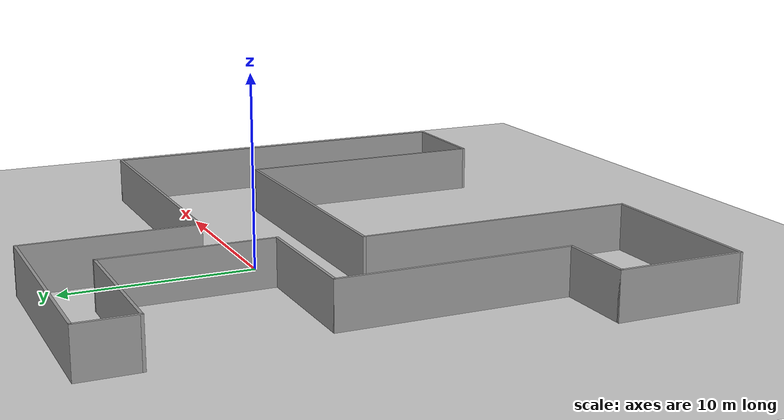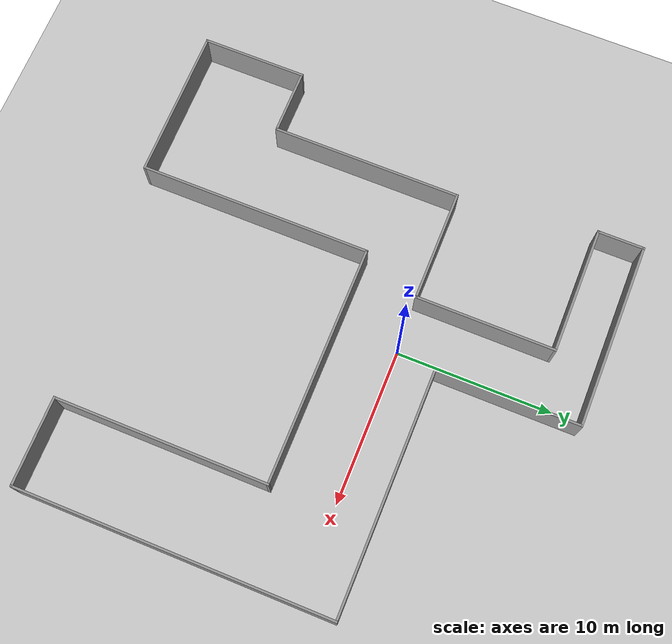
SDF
<sdf version="1.7">
 <world name="default">
  <light name="sun" type="directional">
   <pose>0 0 10 0 -0 0</pose>
   <diffuse>0.8 0.8 0.8 1</diffuse>
   <specular>0.2 0.2 0.2 1</specular>
   <attenuation>
    <range>1000</range>
    <constant>0.9</constant>
    <linear>0.01</linear>
    <quadratic>0.001</quadratic>
   </attenuation>
   <direction>-0.5 0.1 -0.9</direction>
   <spot><inner_angle>0</inner_angle><outer_angle>0</outer_angle><falloff>0</falloff></spot>
  </light>
  <model name="ground_plane">
   <static>1</static>
   <link name="link">
    <collision name="collision">
     <geometry><plane><normal>0 0 1</normal><size>100 100</size></plane></geometry>
     <surface>
      <contact><collide_bitmask>65535</collide_bitmask></contact>
      <friction><ode><mu>100</mu><mu2>50</mu2></ode></friction>
     </surface>
    </collision>
    <visual name="visual">
     <cast_shadows>0</cast_shadows>
     <geometry><plane><normal>0 0 1</normal><size>100 100</size></plane></geometry>
     <material>
      <script><uri>file://media/materials/scripts/gazebo.material</uri><name>Gazebo/Grey</name></script>
     </material>
    </visual>
   </link>
  </model>
  <gravity>0 0 -9.8</gravity>
  <magnetic_field>6e-06 2.3e-05 -4.2e-05</magnetic_field>
  <atmosphere type="adiabatic"/>
  <physics type="ode">
   <max_step_size>0.001</max_step_size>
   <real_time_factor>1</real_time_factor>
   <real_time_update_rate>1000</real_time_update_rate>
  </physics>
  <scene><ambient>0.4 0.4 0.4 1</ambient><background>0.7 0.7 0.7 1</background><shadows>1</shadows></scene>
  <audio><device>default</device></audio>
  <spherical_coordinates>
   <surface_model>EARTH_WGS84</surface_model>
   <latitude_deg>0</latitude_deg>
   <longitude_deg>0</longitude_deg>
   <elevation>0</elevation>
   <heading_deg>0</heading_deg>
  </spherical_coordinates>
  <model name="agent_bot">
   <link name="base_link">
    <inertial>
     <pose>0.102857 0 0.067857 0 -0 0</pose>
     <mass>0.7</mass>
     <inertia>
      <ixx>0.00191829</ixx>
      <ixy>0</ixy>
      <ixz>0.000573214</ixz>
      <iyy>0.00421611</iyy>
      <iyz>0</iyz>
      <izz>0.00434683</izz>
     </inertia>
    </inertial>
    <collision name="base_link_fixed_joint_lump__chassis_collision">
     <pose>0.115 0 0.075 0 -0 0</pose>
     <geometry><box><size>0.215 0.15 0.08</size></box></geometry>
    </collision>
    <collision name="base_link_fixed_joint_lump__caster_wheel_collision_1">
     <pose>0.145 0 0 0 -0 0</pose>
     <geometry><sphere><radius>0.035</radius></sphere></geometry>
     <surface><friction><ode><mu>0.001</mu><mu2>0.001</mu2></ode></friction></surface>
    </collision>
    <collision name="base_link_fixed_joint_lump__laser_frame_collision_2">
     <pose>0 0 0.1 0 -0 0</pose>
     <geometry><cylinder><length>0.04</length><radius>0.05</radius></cylinder></geometry>
    </collision>
    <visual name="base_link_fixed_joint_lump__chassis_visual">
     <pose>0.0725 0 0.04 0 -0 0</pose>
     <geometry><box><size>0.215 0.15 0.08</size></box></geometry>
     <material>
      <script><name>Gazebo/White</name><uri>file://media/materials/scripts/gazebo.material</uri></script>
     </material>
    </visual>
    <visual name="base_link_fixed_joint_lump__caster_wheel_visual_1">
     <pose>0.145 0 0 0 -0 0</pose>
     <geometry><sphere><radius>0.035</radius></sphere></geometry>
     <material>
      <script><name>Gazebo/Yellow</name><uri>file://media/materials/scripts/gazebo.material</uri></script>
     </material>
    </visual>
    <visual name="base_link_fixed_joint_lump__laser_frame_visual_2">
     <pose>0 0 0.1 0 -0 0</pose>
     <geometry><cylinder><length>0.02</length><radius>0.04</radius></cylinder></geometry>
     <material>
      <script><name>Gazebo/Red</name><uri>file://media/materials/scripts/gazebo.material</uri></script>
     </material>
    </visual>
    <sensor name="laser" type="ray">
     <visualize>1</visualize>
     <update_rate>10</update_rate>
     <ray>
      <scan>
       <horizontal>
        <samples>360</samples>
        <min_angle>-3.14</min_angle>
        <max_angle>3.14</max_angle>
        <resolution>1</resolution>
       </horizontal>
       <vertical><samples>1</samples><min_angle>0</min_angle><max_angle>0</max_angle></vertical>
      </scan>
      <range><min>0.3</min><max>50</max></range>
     </ray>
     <plugin name="laser_controller" filename="libgazebo_ros_ray_sensor.so">
      <ros><argument>~/out:=scan</argument></ros>
      <output_type>sensor_msgs/LaserScan</output_type>
      <frame_name>laser_frame</frame_name>
     </plugin>
     <pose>0 0 0.1 0 -0 0</pose>
    </sensor>
   </link>
   <joint name="left_wheel_joint" type="revolute">
    <pose relative_to="base_link">0 0.09 0 -1.57075 0 0</pose>
    <parent>base_link</parent>
    <child>left_wheel</child>
    <axis>
     <xyz>0 0 1</xyz>
     <limit><lower>-1e+16</lower><upper>1e+16</upper></limit>
     <dynamics><spring_reference>0</spring_reference><spring_stiffness>0</spring_stiffness></dynamics>
    </axis>
   </joint>
   <link name="left_wheel">
    <pose relative_to="left_wheel_joint">0 0 0 0 -0 0</pose>
    <inertial>
     <mass>0.1</mass>
     <inertia>
      <ixx>3.58333e-05</ixx>
      <ixy>0</ixy>
      <ixz>0</ixz>
      <iyy>3.58333e-05</iyy>
      <iyz>0</iyz>
      <izz>6.125e-05</izz>
     </inertia>
    </inertial>
    <collision name="left_wheel_collision">
     <geometry><sphere><radius>0.035</radius></sphere></geometry>
    </collision>
    <visual name="left_wheel_visual">
     <geometry><cylinder><length>0.025</length><radius>0.035</radius></cylinder></geometry>
     <material>
      <script><name>Gazebo/Yellow</name><uri>file://media/materials/scripts/gazebo.material</uri></script>
     </material>
    </visual>
   </link>
   <joint name="right_wheel_joint" type="revolute">
    <pose relative_to="base_link">0 -0.09 0 1.57075 -0 0</pose>
    <parent>base_link</parent>
    <child>right_wheel</child>
    <axis>
     <xyz>0 0 -1</xyz>
     <limit><lower>-1e+16</lower><upper>1e+16</upper></limit>
     <dynamics><spring_reference>0</spring_reference><spring_stiffness>0</spring_stiffness></dynamics>
    </axis>
   </joint>
   <link name="right_wheel">
    <pose relative_to="right_wheel_joint">0 0 0 0 -0 0</pose>
    <inertial>
     <mass>0.1</mass>
     <inertia>
      <ixx>3.58333e-05</ixx>
      <ixy>0</ixy>
      <ixz>0</ixz>
      <iyy>3.58333e-05</iyy>
      <iyz>0</iyz>
      <izz>6.125e-05</izz>
     </inertia>
    </inertial>
    <collision name="right_wheel_collision">
     <geometry><sphere><radius>0.035</radius></sphere></geometry>
    </collision>
    <visual name="right_wheel_visual">
     <geometry><cylinder><length>0.025</length><radius>0.035</radius></cylinder></geometry>
     <material>
      <script><name>Gazebo/Yellow</name><uri>file://media/materials/scripts/gazebo.material</uri></script>
     </material>
    </visual>
   </link>
   <static>0</static>
   <plugin name="gazebo_ros2_control" filename="libgazebo_ros2_control.so">
    <parameters>/home/ubuntu-ros/ros_ws/install/agent_bot/share/agent_bot/config/my_controllers.yaml</parameters>
    <parameters>/home/ubuntu-ros/ros_ws/install/agent_bot/share/agent_bot/config/gaz_ros2_ctl_sim.yaml</parameters>
   </plugin>
   <pose>0.025948 0.000189 0.034999 -1.6e-05 -1e-05 -0.00114</pose>
  </model>
  <model name="Map4">
   <pose>1.01233 -2.76325 0 0 -0 0</pose>
   <link name="Wall_0">
    <collision name="Wall_0_Collision">
     <geometry><box><size>3 0.15 2.5</size></box></geometry>
     <pose>0 0 1.25 0 -0 0</pose>
    </collision>
    <visual name="Wall_0_Visual">
     <pose>0 0 1.25 0 -0 0</pose>
     <geometry><box><size>3 0.15 2.5</size></box></geometry>
     <material>
      <script><uri>file://media/materials/scripts/gazebo.material</uri><name>Gazebo/Grey</name></script>
      <ambient>1 1 1 1</ambient>
     </material>
     <meta><layer>0</layer></meta>
    </visual>
    <pose>-12.175 12.9925 0 0 -0 1.5708</pose>
   </link>
   <link name="Wall_1">
    <collision name="Wall_1_Collision">
     <geometry><box><size>12 0.15 2.5</size></box></geometry>
     <pose>0 0 1.25 0 -0 0</pose>
    </collision>
    <visual name="Wall_1_Visual">
     <pose>0 0 1.25 0 -0 0</pose>
     <geometry><box><size>12 0.15 2.5</size></box></geometry>
     <material>
      <script><uri>file://media/materials/scripts/gazebo.material</uri><name>Gazebo/Grey</name></script>
      <ambient>1 1 1 1</ambient>
     </material>
     <meta><layer>0</layer></meta>
    </visual>
    <pose>-6.25 14.4175 0 0 -0 0</pose>
   </link>
   <link name="Wall_10">
    <collision name="Wall_10_Collision">
     <geometry><box><size>6.75 0.15 2.5</size></box></geometry>
     <pose>0 0 1.25 0 -0 0</pose>
    </collision>
    <visual name="Wall_10_Visual">
     <pose>0 0 1.25 0 -0 0</pose>
     <geometry><box><size>6.75 0.15 2.5</size></box></geometry>
     <material>
      <script><uri>file://media/materials/scripts/gazebo.material</uri><name>Gazebo/Grey</name></script>
      <ambient>1 1 1 1</ambient>
     </material>
     <meta><layer>0</layer></meta>
    </visual>
    <pose>-15.275 -12.7325 0 0 -0 1.5708</pose>
   </link>
   <link name="Wall_11">
    <collision name="Wall_11_Collision">
     <geometry><box><size>4.25 0.15 2.5</size></box></geometry>
     <pose>0 0 1.25 0 -0 0</pose>
    </collision>
    <visual name="Wall_11_Visual">
     <pose>0 0 1.25 0 -0 0</pose>
     <geometry><box><size>4.25 0.15 2.5</size></box></geometry>
     <material>
      <script><uri>file://media/materials/scripts/gazebo.material</uri><name>Gazebo/Grey</name></script>
      <ambient>1 1 1 1</ambient>
     </material>
     <meta><layer>0</layer></meta>
    </visual>
    <pose>-13.225 -9.4325 0 0 -0 0</pose>
   </link>
   <link name="Wall_12">
    <collision name="Wall_12_Collision">
     <geometry><box><size>12.25 0.15 2.5</size></box></geometry>
     <pose>0 0 1.25 0 -0 0</pose>
    </collision>
    <visual name="Wall_12_Visual">
     <pose>0 0 1.25 0 -0 0</pose>
     <geometry><box><size>12.25 0.15 2.5</size></box></geometry>
     <material>
      <script><uri>file://media/materials/scripts/gazebo.material</uri><name>Gazebo/Grey</name></script>
      <ambient>1 1 1 1</ambient>
     </material>
     <meta><layer>0</layer></meta>
    </visual>
    <pose>-11.175 -3.3825 0 0 -0 1.5708</pose>
   </link>
   <link name="Wall_13">
    <collision name="Wall_13_Collision">
     <geometry><box><size>7.25 0.15 2.5</size></box></geometry>
     <pose>0 0 1.25 0 -0 0</pose>
    </collision>
    <visual name="Wall_13_Visual">
     <pose>0 0 1.25 0 -0 0</pose>
     <geometry><box><size>7.25 0.15 2.5</size></box></geometry>
     <material>
      <script><uri>file://media/materials/scripts/gazebo.material</uri><name>Gazebo/Grey</name></script>
      <ambient>1 1 1 1</ambient>
     </material>
     <meta><layer>0</layer></meta>
    </visual>
    <pose>-7.625 2.6675 0 0 -0 0</pose>
   </link>
   <link name="Wall_14">
    <collision name="Wall_14_Collision">
     <geometry><box><size>9 0.15 2.5</size></box></geometry>
     <pose>0 0 1.25 0 -0 0</pose>
    </collision>
    <visual name="Wall_14_Visual">
     <pose>0 0 1.25 0 -0 0</pose>
     <geometry><box><size>9 0.15 2.5</size></box></geometry>
     <material>
      <script><uri>file://media/materials/scripts/gazebo.material</uri><name>Gazebo/Grey</name></script>
      <ambient>1 1 1 1</ambient>
     </material>
     <meta><layer>0</layer></meta>
    </visual>
    <pose>-4.075 7.0925 0 0 -0 1.5708</pose>
   </link>
   <link name="Wall_15">
    <collision name="Wall_15_Collision">
     <geometry><box><size>8.25015 0.15 2.5</size></box></geometry>
     <pose>0 0 1.25 0 -0 0</pose>
    </collision>
    <visual name="Wall_15_Visual">
     <pose>0 0 1.25 0 -0 0</pose>
     <geometry><box><size>8.25015 0.15 2.5</size></box></geometry>
     <material>
      <script><uri>file://media/materials/scripts/gazebo.material</uri><name>Gazebo/Grey</name></script>
      <ambient>1 1 1 1</ambient>
     </material>
     <meta><layer>0</layer></meta>
    </visual>
    <pose>-8.125 11.5175 0 0 -0 3.14159</pose>
   </link>
   <link name="Wall_2">
    <collision name="Wall_2_Collision">
     <geometry><box><size>9.25 0.15 2.5</size></box></geometry>
     <pose>0 0 1.25 0 -0 0</pose>
    </collision>
    <visual name="Wall_2_Visual">
     <pose>0 0 1.25 0 -0 0</pose>
     <geometry><box><size>9.25 0.15 2.5</size></box></geometry>
     <material>
      <script><uri>file://media/materials/scripts/gazebo.material</uri><name>Gazebo/Grey</name></script>
      <ambient>1 1 1 1</ambient>
     </material>
     <meta><layer>0</layer></meta>
    </visual>
    <pose>-0.325001 9.8675 0 0 -0 -1.5708</pose>
   </link>
   <link name="Wall_3">
    <collision name="Wall_3_Collision">
     <geometry><box><size>15.75 0.15 2.5</size></box></geometry>
     <pose>0 0 1.25 0 -0 0</pose>
    </collision>
    <visual name="Wall_3_Visual">
     <pose>0 0 1.25 0 -0 0</pose>
     <geometry><box><size>15.75 0.15 2.5</size></box></geometry>
     <material>
      <script><uri>file://media/materials/scripts/gazebo.material</uri><name>Gazebo/Grey</name></script>
      <ambient>1 1 1 1</ambient>
     </material>
     <meta><layer>0</layer></meta>
    </visual>
    <pose>7.475 5.3175 0 0 -0 0</pose>
   </link>
   <link name="Wall_4">
    <collision name="Wall_4_Collision">
     <geometry><box><size>20.25 0.15 2.5</size></box></geometry>
     <pose>0 0 1.25 0 -0 0</pose>
    </collision>
    <visual name="Wall_4_Visual">
     <pose>0 0 1.25 0 -0 0</pose>
     <geometry><box><size>20.25 0.15 2.5</size></box></geometry>
     <material>
      <script><uri>file://media/materials/scripts/gazebo.material</uri><name>Gazebo/Grey</name></script>
      <ambient>1 1 1 1</ambient>
     </material>
     <meta><layer>0</layer></meta>
    </visual>
    <pose>15.275 -4.7325 0 0 -0 -1.5708</pose>
   </link>
   <link name="Wall_5">
    <collision name="Wall_5_Collision">
     <geometry><box><size>5.75 0.15 2.5</size></box></geometry>
     <pose>0 0 1.25 0 -0 0</pose>
    </collision>
    <visual name="Wall_5_Visual">
     <pose>0 0 1.25 0 -0 0</pose>
     <geometry><box><size>5.75 0.15 2.5</size></box></geometry>
     <material>
      <script><uri>file://media/materials/scripts/gazebo.material</uri><name>Gazebo/Grey</name></script>
      <ambient>1 1 1 1</ambient>
     </material>
     <meta><layer>0</layer></meta>
    </visual>
    <pose>12.475 -14.7825 0 0 -0 3.14159</pose>
   </link>
   <link name="Wall_6">
    <collision name="Wall_6_Collision">
     <geometry><box><size>13.75 0.15 2.5</size></box></geometry>
     <pose>0 0 1.25 0 -0 0</pose>
    </collision>
    <visual name="Wall_6_Visual">
     <pose>0 0 1.25 0 -0 0</pose>
     <geometry><box><size>13.75 0.15 2.5</size></box></geometry>
     <material>
      <script><uri>file://media/materials/scripts/gazebo.material</uri><name>Gazebo/Grey</name></script>
      <ambient>1 1 1 1</ambient>
     </material>
     <meta><layer>0</layer></meta>
    </visual>
    <pose>9.675 -7.9825 0 0 -0 1.5708</pose>
   </link>
   <link name="Wall_7">
    <collision name="Wall_7_Collision">
     <geometry><box><size>15.5 0.15 2.5</size></box></geometry>
     <pose>0 0 1.25 0 -0 0</pose>
    </collision>
    <visual name="Wall_7_Visual">
     <pose>0 0 1.25 0 -0 0</pose>
     <geometry><box><size>15.5 0.15 2.5</size></box></geometry>
     <material>
      <script><uri>file://media/materials/scripts/gazebo.material</uri><name>Gazebo/Grey</name></script>
      <ambient>1 1 1 1</ambient>
     </material>
     <meta><layer>0</layer></meta>
    </visual>
    <pose>2 -1.1825 0 0 -0 3.14159</pose>
   </link>
   <link name="Wall_8">
    <collision name="Wall_8_Collision">
     <geometry><box><size>15 0.15 2.5</size></box></geometry>
     <pose>0 0 1.25 0 -0 0</pose>
    </collision>
    <visual name="Wall_8_Visual">
     <pose>0 0 1.25 0 -0 0</pose>
     <geometry><box><size>15 0.15 2.5</size></box></geometry>
     <material>
      <script><uri>file://media/materials/scripts/gazebo.material</uri><name>Gazebo/Grey</name></script>
      <ambient>1 1 1 1</ambient>
     </material>
     <meta><layer>0</layer></meta>
    </visual>
    <pose>-5.675 -8.6075 0 0 -0 -1.5708</pose>
   </link>
   <link name="Wall_9">
    <collision name="Wall_9_Collision">
     <geometry><box><size>9.75 0.15 2.5</size></box></geometry>
     <pose>0 0 1.25 0 -0 0</pose>
    </collision>
    <visual name="Wall_9_Visual">
     <pose>0 0 1.25 0 -0 0</pose>
     <geometry><box><size>9.75 0.15 2.5</size></box></geometry>
     <material>
      <script><uri>file://media/materials/scripts/gazebo.material</uri><name>Gazebo/Grey</name></script>
      <ambient>1 1 1 1</ambient>
     </material>
     <meta><layer>0</layer></meta>
    </visual>
    <pose>-10.475 -16.0325 0 0 -0 3.14159</pose>
   </link>
   <static>1</static>
  </model>
 </world>
</sdf>
